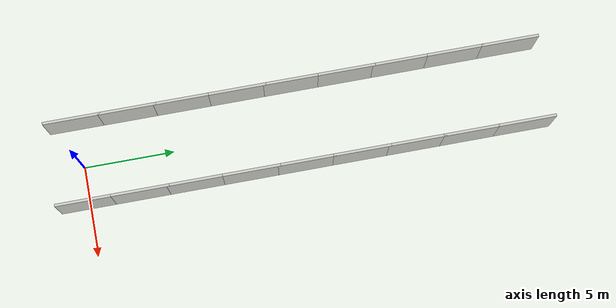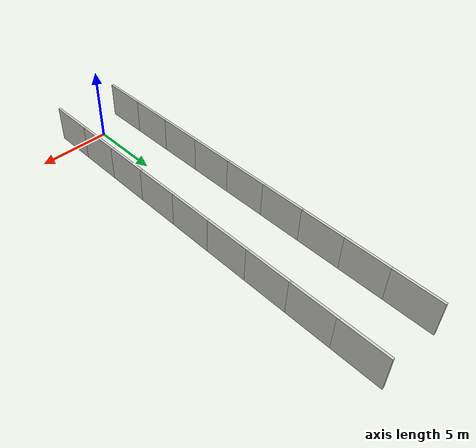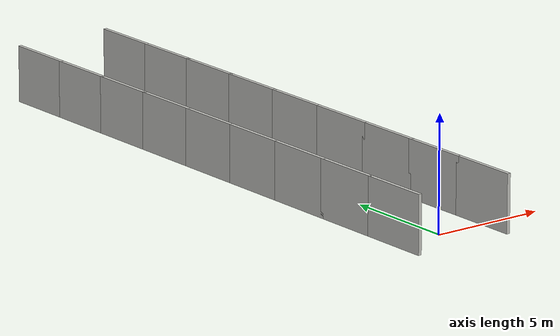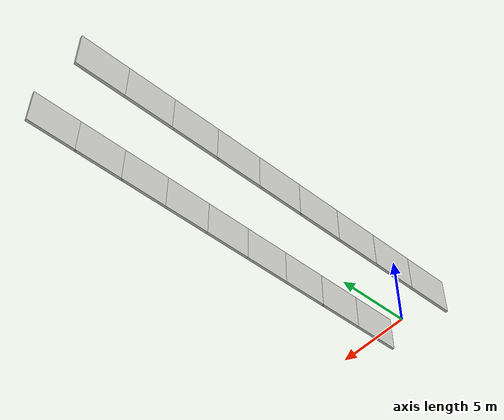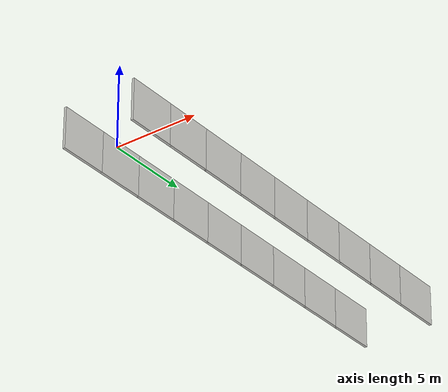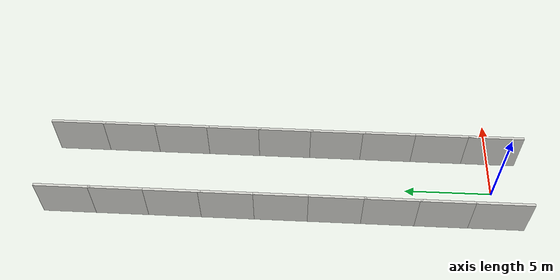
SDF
<?xml version="1.0" ?>
<sdf version="1.5">
  <model name="Acourse_wall">

    <include>
      <name>w1</name>
      <pose>-2.25 0 0 0 0 1.5708</pose>
      <uri>model://3m_wall</uri>
    </include>
    <include>
      <name>w2</name>
      <pose>-2.25 3 0 0 0 1.5708</pose>
      <uri>model://3m_wall</uri>
    </include>
    <include>
      <name>w3</name>
      <pose>-2.25 6 0 0 0 1.5708</pose>
      <uri>model://3m_wall</uri>
    </include>
    <include>
      <name>w4</name>
      <pose>-2.25 9 0 0 0 1.5708</pose>
      <uri>model://3m_wall</uri>
    </include>
    <include>
      <name>w5</name>
      <pose>-2.25 12 0 0 0 1.5708</pose>
      <uri>model://3m_wall</uri>
    </include>
    <include>
      <name>w6</name>
      <pose>-2.25 15 0 0 0 1.5708</pose>
      <uri>model://3m_wall</uri>
    </include>
    <include>
      <name>w7</name>
      <pose>-2.25 18 0 0 0 1.5708</pose>
      <uri>model://3m_wall</uri>
    </include>
    <include>
      <name>w8</name>
      <pose>-2.25 21 0 0 0 1.5708</pose>
      <uri>model://3m_wall</uri>
    </include>
    <include>
      <name>w9</name>
      <pose>-2.25 24 0 0 0 1.5708</pose>
      <uri>model://3m_wall</uri>
    </include>

    <include>
      <name>w10</name>
      <pose>2.25 0 0 0 0 1.5708</pose>
      <uri>model://3m_wall</uri>
    </include>
    <include>
      <name>w11</name>
      <pose>2.25 3 0 0 0 1.5708</pose>
      <uri>model://3m_wall</uri>
    </include>
    <include>
      <name>w12</name>
      <pose>2.25 6 0 0 0 1.5708</pose>
      <uri>model://3m_wall</uri>
    </include>
    <include>
      <name>w13</name>
      <pose>2.25 9 0 0 0 1.5708</pose>
      <uri>model://3m_wall</uri>
    </include>
    <include>
      <name>w14</name>
      <pose>2.25 12 0 0 0 1.5708</pose>
      <uri>model://3m_wall</uri>
    </include>
    <include>
      <name>w15</name>
      <pose>2.25 15 0 0 0 1.5708</pose>
      <uri>model://3m_wall</uri>
    </include>
    <include>
      <name>w16</name>
      <pose>2.25 18 0 0 0 1.5708</pose>
      <uri>model://3m_wall</uri>
    </include>
    <include>
      <name>w17</name>
      <pose>2.25 21 0 0 0 1.5708</pose>
      <uri>model://3m_wall</uri>
    </include>
    <include>
      <name>w18</name>
      <pose>2.25 24 0 0 0 1.5708</pose>
      <uri>model://3m_wall</uri>
    </include>
  </model>
</sdf>

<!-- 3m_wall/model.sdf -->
<sdf version='1.6'>
  <model name='3m_wall'>
    <pose frame=''>1.5 0 0 0 -0 0</pose>
    <link name='Wall_45'>
      <collision name='Wall_45_Collision'>
        <geometry>
          <box>
            <size>3.15 0.15 2.5</size>
          </box>
        </geometry>
        <pose frame=''>0 0 1.25 0 -0 0</pose>
      </collision>
      <visual name='Wall_45_Visual'>
        <pose frame=''>0 0 1.25 0 -0 0</pose>
        <geometry>
          <box>
            <size>3.15 0.15 2.5</size>
          </box>
        </geometry>
        <material>
          <script>
            <uri>file://media/materials/scripts/gazebo.material</uri>
            <name>Gazebo/CeilingTiled</name>
          </script>
          <ambient>1 1 1 1</ambient>
        </material>
        <meta>
          <layer>0</layer>
        </meta>
      </visual>
      <pose frame=''>0 0 0 0 -0 0</pose>
    </link>
    <static>1</static>
  </model>
</sdf>
